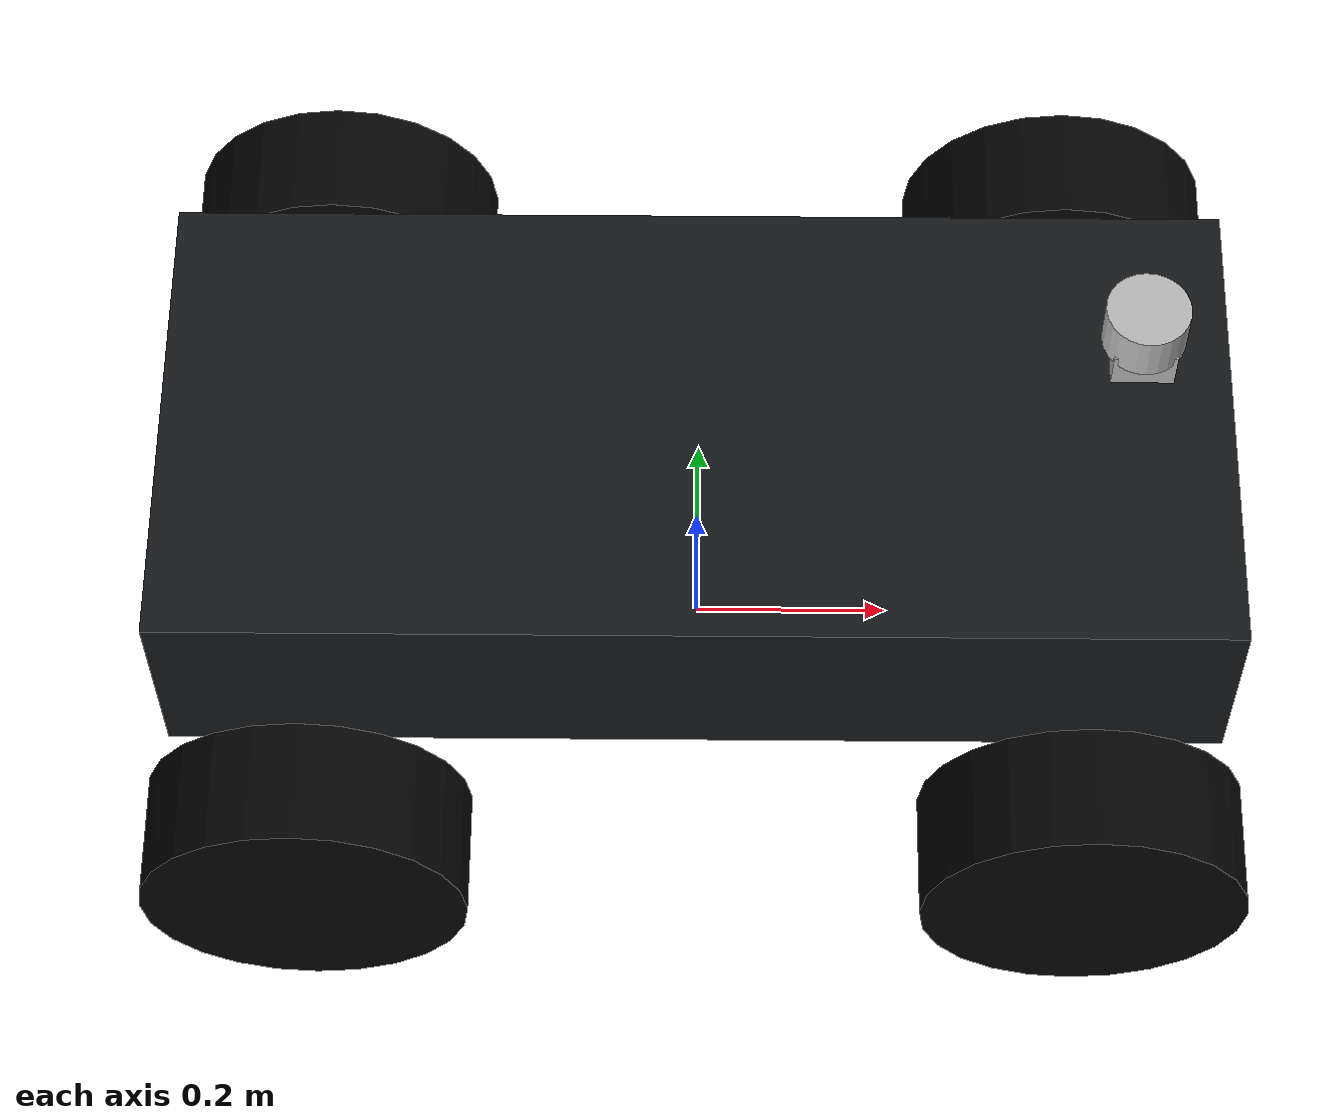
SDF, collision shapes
<?xml version="1.0"?>
<sdf version="1.6">
  <model name="explorer_ackermann_rover">
    <link name="base_link">
      <pose>0 0 0 0 0 0</pose>
      <inertial>
        <pose>0 0 0.28 0 0 0</pose>
        <mass>18.0</mass>
        <inertia>
          <ixx>0.62</ixx>
          <ixy>0.0</ixy>
          <ixz>0.0</ixz>
          <iyy>1.55</iyy>
          <iyz>0.0</iyz>
          <izz>1.85</izz>
        </inertia>
      </inertial>

      <collision name="body_collision">
        <pose>0 0 0.28 0 0 0</pose>
        <geometry>
          <box>
            <size>1.05 0.48 0.22</size>
          </box>
        </geometry>
      </collision>

      <visual name="lower_chassis_visual">
        <pose>0 0 0.24 0 0 0</pose>
        <geometry>
          <box>
            <size>1.18 0.52 0.12</size>
          </box>
        </geometry>
        <material>
          <ambient>0.08 0.09 0.10 1</ambient>
          <diffuse>0.08 0.09 0.10 1</diffuse>
          <specular>0.15 0.15 0.15 1</specular>
        </material>
      </visual>

      <visual name="upper_hull_visual">
        <pose>-0.08 0 0.37 0 0 0</pose>
        <geometry>
          <box>
            <size>1.02 0.50 0.18</size>
          </box>
        </geometry>
        <material>
          <ambient>0.72 0.76 0.70 1</ambient>
          <diffuse>0.72 0.76 0.70 1</diffuse>
          <specular>0.25 0.25 0.22 1</specular>
        </material>
      </visual>

      <visual name="front_payload_bay_visual">
        <pose>0.42 0 0.43 0 0 0</pose>
        <geometry>
          <box>
            <size>0.24 0.34 0.16</size>
          </box>
        </geometry>
        <material>
          <ambient>0.84 0.86 0.82 1</ambient>
          <diffuse>0.84 0.86 0.82 1</diffuse>
          <specular>0.3 0.3 0.28 1</specular>
        </material>
      </visual>

      <visual name="front_bumper_visual">
        <pose>0.63 0 0.23 0 0 0</pose>
        <geometry>
          <box>
            <size>0.06 0.62 0.10</size>
          </box>
        </geometry>
        <material>
          <ambient>0.95 0.36 0.08 1</ambient>
          <diffuse>0.95 0.36 0.08 1</diffuse>
          <specular>0.2 0.12 0.08 1</specular>
        </material>
      </visual>

      <visual name="rear_bumper_visual">
        <pose>-0.63 0 0.23 0 0 0</pose>
        <geometry>
          <box>
            <size>0.06 0.62 0.10</size>
          </box>
        </geometry>
        <material>
          <ambient>0.95 0.36 0.08 1</ambient>
          <diffuse>0.95 0.36 0.08 1</diffuse>
          <specular>0.2 0.12 0.08 1</specular>
        </material>
      </visual>

      <visual name="camera_body_visual">
        <pose>0.56 0 0.45 0 0 0</pose>
        <geometry>
          <box>
            <size>0.08 0.16 0.09</size>
          </box>
        </geometry>
        <material>
          <ambient>0.03 0.03 0.035 1</ambient>
          <diffuse>0.03 0.03 0.035 1</diffuse>
          <specular>0.35 0.35 0.35 1</specular>
        </material>
      </visual>

      <visual name="camera_lens_visual">
        <pose>0.615 0 0.45 0 1.5707 0</pose>
        <geometry>
          <cylinder>
            <radius>0.045</radius>
            <length>0.035</length>
          </cylinder>
        </geometry>
        <material>
          <ambient>0.0 0.025 0.05 1</ambient>
          <diffuse>0.0 0.06 0.12 1</diffuse>
          <specular>0.8 0.9 1.0 1</specular>
        </material>
      </visual>

      <visual name="rear_aruco_marker_visual">
        <pose>-0.20 0 0.464 0 0 0</pose>
        <geometry>
          <plane>
            <normal>0 0 1</normal>
            <size>0.32 0.32</size>
          </plane>
        </geometry>
        <material>
          <diffuse>1 1 1 1</diffuse>
          <specular>0.4 0.4 0.4 1</specular>
          <pbr>
            <metal>
              <albedo_map>model://arucotag/arucotag.png</albedo_map>
            </metal>
          </pbr>
        </material>
      </visual>

      <sensor name="air_pressure_sensor" type="air_pressure">
        <gz_frame_id>base_link</gz_frame_id>
        <always_on>1</always_on>
        <update_rate>50</update_rate>
        <air_pressure>
          <pressure>
            <noise type="gaussian">
              <mean>0</mean>
              <stddev>3</stddev>
            </noise>
          </pressure>
        </air_pressure>
      </sensor>

      <sensor name="magnetometer_sensor" type="magnetometer">
        <gz_frame_id>base_link</gz_frame_id>
        <always_on>1</always_on>
        <update_rate>100</update_rate>
        <magnetometer>
          <x>
            <noise type="gaussian">
              <stddev>0.0001</stddev>
            </noise>
          </x>
          <y>
            <noise type="gaussian">
              <stddev>0.0001</stddev>
            </noise>
          </y>
          <z>
            <noise type="gaussian">
              <stddev>0.0001</stddev>
            </noise>
          </z>
        </magnetometer>
      </sensor>

      <sensor name="imu_sensor" type="imu">
        <gz_frame_id>base_link</gz_frame_id>
        <always_on>1</always_on>
        <update_rate>250</update_rate>
        <imu>
          <angular_velocity>
            <x>
              <noise type="gaussian">
                <mean>0.0</mean>
                <stddev>0.0008726646</stddev>
              </noise>
            </x>
            <y>
              <noise type="gaussian">
                <mean>0.0</mean>
                <stddev>0.0008726646</stddev>
              </noise>
            </y>
            <z>
              <noise type="gaussian">
                <mean>0.0</mean>
                <stddev>0.0008726646</stddev>
              </noise>
            </z>
          </angular_velocity>
          <linear_acceleration>
            <x>
              <noise type="gaussian">
                <mean>0.0</mean>
                <stddev>0.00637</stddev>
              </noise>
            </x>
            <y>
              <noise type="gaussian">
                <mean>0.0</mean>
                <stddev>0.00637</stddev>
              </noise>
            </y>
            <z>
              <noise type="gaussian">
                <mean>0.0</mean>
                <stddev>0.00686</stddev>
              </noise>
            </z>
          </linear_acceleration>
        </imu>
      </sensor>

      <sensor name="navsat_sensor" type="navsat">
        <gz_frame_id>base_link</gz_frame_id>
        <always_on>1</always_on>
        <update_rate>30</update_rate>
      </sensor>
    </link>

    <link name="lidar_sensor_link">
      <pose relative_to="base_link">0.42 0 0.51 0 0 0</pose>
      <inertial>
        <pose>0 0 0.0435 0 0 0</pose>
        <mass>0.37</mass>
        <inertia>
          <ixx>0.0003443775</ixx>
          <ixy>0</ixy>
          <ixz>0</ixz>
          <iyy>0.0003443775</iyy>
          <iyz>0</iyz>
          <izz>0.000222</izz>
        </inertia>
      </inertial>
      <collision name="collision_base">
        <pose>0 0 0.0205 0 0 0</pose>
        <geometry>
          <box>
            <size>0.06 0.06 0.041</size>
          </box>
        </geometry>
      </collision>
      <collision name="collision_head">
        <pose>0 0 0.055 0 0 0</pose>
        <geometry>
          <cylinder>
            <radius>0.04</radius>
            <length>0.05</length>
          </cylinder>
        </geometry>
      </collision>
      <visual name="visual">
        <geometry>
          <mesh>
            <uri>model://lidar_2d_v2/meshes/lidar_2d_v2.dae</uri>
          </mesh>
        </geometry>
      </visual>

      <sensor name="lidar" type="gpu_lidar">
        <gz_frame_id>lidar_sensor_link</gz_frame_id>
        <pose>0 0 0.055 0 0 0</pose>
        <update_rate>20</update_rate>
        <always_on>1</always_on>
        <visualize>false</visualize>
        <ray>
          <scan>
            <horizontal>
              <samples>1024</samples>
              <resolution>1</resolution>
              <min_angle>-3.14159265</min_angle>
              <max_angle>3.14159265</max_angle>
            </horizontal>
            <vertical>
              <samples>1</samples>
              <resolution>1</resolution>
              <min_angle>0.0</min_angle>
              <max_angle>0.0</max_angle>
            </vertical>
          </scan>
          <range>
            <min>0.1</min>
            <max>30.0</max>
            <resolution>0.01</resolution>
          </range>
          <noise>
            <type>gaussian</type>
            <mean>0.0</mean>
            <stddev>0.002</stddev>
          </noise>
        </ray>
      </sensor>
    </link>

    <joint name="lidar_sensor_joint" type="fixed">
      <parent>base_link</parent>
      <child>lidar_sensor_link</child>
    </joint>

    <link name="lf_wheel_link">
      <pose>0.38 0.36 0.16 0 0 0</pose>
      <inertial>
        <pose>0 0 0 1.57079632679 0 0</pose>
        <mass>1.2</mass>
        <inertia>
          <ixx>0.0062</ixx>
          <ixy>0</ixy>
          <ixz>0</ixz>
          <iyy>0.0062</iyy>
          <iyz>0</iyz>
          <izz>0.0108</izz>
        </inertia>
      </inertial>
      <collision name="collision">
        <pose>0 0 0 1.57079632679 0 0</pose>
        <geometry>
          <cylinder>
            <radius>0.16</radius>
            <length>0.12</length>
          </cylinder>
        </geometry>
        <surface>
          <friction>
            <ode>
              <mu>1.5</mu>
              <mu2>1.5</mu2>
              <fdir1>1 0 0</fdir1>
              <slip1>0.0</slip1>
              <slip2>0.0</slip2>
            </ode>
          </friction>
        </surface>
      </collision>
      <visual name="tire_visual">
        <pose>0 0 0 1.57079632679 0 0</pose>
        <geometry>
          <cylinder>
            <radius>0.16</radius>
            <length>0.12</length>
          </cylinder>
        </geometry>
        <material>
          <ambient>0.015 0.015 0.015 1</ambient>
          <diffuse>0.015 0.015 0.015 1</diffuse>
          <specular>0.08 0.08 0.08 1</specular>
        </material>
      </visual>
      <visual name="hub_visual">
        <pose>0 0.063 0 1.57079632679 0 0</pose>
        <geometry>
          <cylinder>
            <radius>0.075</radius>
            <length>0.014</length>
          </cylinder>
        </geometry>
        <material>
          <ambient>0.72 0.72 0.68 1</ambient>
          <diffuse>0.72 0.72 0.68 1</diffuse>
          <specular>0.35 0.35 0.32 1</specular>
        </material>
      </visual>
    </link>

    <link name="lb_wheel_link">
      <pose>-0.38 0.36 0.16 0 0 0</pose>
      <inertial>
        <pose>0 0 0 1.57079632679 0 0</pose>
        <mass>1.2</mass>
        <inertia>
          <ixx>0.0062</ixx>
          <ixy>0</ixy>
          <ixz>0</ixz>
          <iyy>0.0062</iyy>
          <iyz>0</iyz>
          <izz>0.0108</izz>
        </inertia>
      </inertial>
      <collision name="collision">
        <pose>0 0 0 1.57079632679 0 0</pose>
        <geometry>
          <cylinder>
            <radius>0.16</radius>
            <length>0.12</length>
          </cylinder>
        </geometry>
        <surface>
          <friction>
            <ode>
              <mu>1.5</mu>
              <mu2>1.5</mu2>
              <fdir1>1 0 0</fdir1>
              <slip1>0.0</slip1>
              <slip2>0.0</slip2>
            </ode>
          </friction>
        </surface>
      </collision>
      <visual name="tire_visual">
        <pose>0 0 0 1.57079632679 0 0</pose>
        <geometry>
          <cylinder>
            <radius>0.16</radius>
            <length>0.12</length>
          </cylinder>
        </geometry>
        <material>
          <ambient>0.015 0.015 0.015 1</ambient>
          <diffuse>0.015 0.015 0.015 1</diffuse>
          <specular>0.08 0.08 0.08 1</specular>
        </material>
      </visual>
      <visual name="hub_visual">
        <pose>0 0.063 0 1.57079632679 0 0</pose>
        <geometry>
          <cylinder>
            <radius>0.075</radius>
            <length>0.014</length>
          </cylinder>
        </geometry>
        <material>
          <ambient>0.72 0.72 0.68 1</ambient>
          <diffuse>0.72 0.72 0.68 1</diffuse>
          <specular>0.35 0.35 0.32 1</specular>
        </material>
      </visual>
    </link>

    <link name="rf_wheel_link">
      <pose>0.38 -0.36 0.16 0 0 0</pose>
      <inertial>
        <pose>0 0 0 1.57079632679 0 0</pose>
        <mass>1.2</mass>
        <inertia>
          <ixx>0.0062</ixx>
          <ixy>0</ixy>
          <ixz>0</ixz>
          <iyy>0.0062</iyy>
          <iyz>0</iyz>
          <izz>0.0108</izz>
        </inertia>
      </inertial>
      <collision name="collision">
        <pose>0 0 0 1.57079632679 0 0</pose>
        <geometry>
          <cylinder>
            <radius>0.16</radius>
            <length>0.12</length>
          </cylinder>
        </geometry>
        <surface>
          <friction>
            <ode>
              <mu>1.5</mu>
              <mu2>1.5</mu2>
              <fdir1>1 0 0</fdir1>
              <slip1>0.0</slip1>
              <slip2>0.0</slip2>
            </ode>
          </friction>
        </surface>
      </collision>
      <visual name="tire_visual">
        <pose>0 0 0 1.57079632679 0 0</pose>
        <geometry>
          <cylinder>
            <radius>0.16</radius>
            <length>0.12</length>
          </cylinder>
        </geometry>
        <material>
          <ambient>0.015 0.015 0.015 1</ambient>
          <diffuse>0.015 0.015 0.015 1</diffuse>
          <specular>0.08 0.08 0.08 1</specular>
        </material>
      </visual>
      <visual name="hub_visual">
        <pose>0 -0.063 0 1.57079632679 0 0</pose>
        <geometry>
          <cylinder>
            <radius>0.075</radius>
            <length>0.014</length>
          </cylinder>
        </geometry>
        <material>
          <ambient>0.72 0.72 0.68 1</ambient>
          <diffuse>0.72 0.72 0.68 1</diffuse>
          <specular>0.35 0.35 0.32 1</specular>
        </material>
      </visual>
    </link>

    <link name="rb_wheel_link">
      <pose>-0.38 -0.36 0.16 0 0 0</pose>
      <inertial>
        <pose>0 0 0 1.57079632679 0 0</pose>
        <mass>1.2</mass>
        <inertia>
          <ixx>0.0062</ixx>
          <ixy>0</ixy>
          <ixz>0</ixz>
          <iyy>0.0062</iyy>
          <iyz>0</iyz>
          <izz>0.0108</izz>
        </inertia>
      </inertial>
      <collision name="collision">
        <pose>0 0 0 1.57079632679 0 0</pose>
        <geometry>
          <cylinder>
            <radius>0.16</radius>
            <length>0.12</length>
          </cylinder>
        </geometry>
        <surface>
          <friction>
            <ode>
              <mu>1.5</mu>
              <mu2>1.5</mu2>
              <fdir1>1 0 0</fdir1>
              <slip1>0.0</slip1>
              <slip2>0.0</slip2>
            </ode>
          </friction>
        </surface>
      </collision>
      <visual name="tire_visual">
        <pose>0 0 0 1.57079632679 0 0</pose>
        <geometry>
          <cylinder>
            <radius>0.16</radius>
            <length>0.12</length>
          </cylinder>
        </geometry>
        <material>
          <ambient>0.015 0.015 0.015 1</ambient>
          <diffuse>0.015 0.015 0.015 1</diffuse>
          <specular>0.08 0.08 0.08 1</specular>
        </material>
      </visual>
      <visual name="hub_visual">
        <pose>0 -0.063 0 1.57079632679 0 0</pose>
        <geometry>
          <cylinder>
            <radius>0.075</radius>
            <length>0.014</length>
          </cylinder>
        </geometry>
        <material>
          <ambient>0.72 0.72 0.68 1</ambient>
          <diffuse>0.72 0.72 0.68 1</diffuse>
          <specular>0.35 0.35 0.32 1</specular>
        </material>
      </visual>
    </link>

    <link name="lf_steering_link">
      <pose relative_to="lf_wheel_link">0 0 0 0 0 0</pose>
      <inertial>
        <mass>0.20</mass>
        <inertia>
          <ixx>0.00012</ixx>
          <iyy>0.00012</iyy>
          <izz>0.00012</izz>
        </inertia>
      </inertial>
    </link>

    <link name="rf_steering_link">
      <pose relative_to="rf_wheel_link">0 0 0 0 0 0</pose>
      <inertial>
        <mass>0.20</mass>
        <inertia>
          <ixx>0.00012</ixx>
          <iyy>0.00012</iyy>
          <izz>0.00012</izz>
        </inertia>
      </inertial>
    </link>

    <joint name="lf_steering_joint" type="revolute">
      <parent>base_link</parent>
      <child>lf_steering_link</child>
      <pose relative_to="lf_steering_link">0 0 0 0 0 0</pose>
      <axis>
        <xyz>0 0 1</xyz>
        <limit>
          <lower>-0.5236</lower>
          <upper>0.5236</upper>
        </limit>
        <dynamics>
          <damping>0.8</damping>
          <friction>0.02</friction>
        </dynamics>
        <use_parent_model_frame>1</use_parent_model_frame>
      </axis>
    </joint>

    <joint name="rf_steering_joint" type="revolute">
      <parent>base_link</parent>
      <child>rf_steering_link</child>
      <pose relative_to="rf_steering_link">0 0 0 0 0 0</pose>
      <axis>
        <xyz>0 0 1</xyz>
        <limit>
          <lower>-0.5236</lower>
          <upper>0.5236</upper>
        </limit>
        <dynamics>
          <damping>0.8</damping>
          <friction>0.02</friction>
        </dynamics>
        <use_parent_model_frame>1</use_parent_model_frame>
      </axis>
    </joint>

    <joint name="front_left_wheel_joint" type="revolute">
      <child>lf_wheel_link</child>
      <parent>lf_steering_link</parent>
      <axis>
        <xyz>0 1 0</xyz>
        <limit>
          <lower>-1e+16</lower>
          <upper>1e+16</upper>
        </limit>
        <dynamics>
          <spring_reference>0</spring_reference>
          <spring_stiffness>0</spring_stiffness>
        </dynamics>
        <use_parent_model_frame>1</use_parent_model_frame>
      </axis>
    </joint>

    <joint name="rear_left_wheel_joint" type="revolute">
      <child>lb_wheel_link</child>
      <parent>base_link</parent>
      <axis>
        <xyz>0 1 0</xyz>
        <limit>
          <lower>-1e+16</lower>
          <upper>1e+16</upper>
        </limit>
        <dynamics>
          <spring_reference>0</spring_reference>
          <spring_stiffness>0</spring_stiffness>
        </dynamics>
        <use_parent_model_frame>1</use_parent_model_frame>
      </axis>
    </joint>

    <joint name="front_right_wheel_joint" type="revolute">
      <child>rf_wheel_link</child>
      <parent>rf_steering_link</parent>
      <axis>
        <xyz>0 -1 0</xyz>
        <limit>
          <lower>-1e+16</lower>
          <upper>1e+16</upper>
        </limit>
        <dynamics>
          <spring_reference>0</spring_reference>
          <spring_stiffness>0</spring_stiffness>
        </dynamics>
        <use_parent_model_frame>1</use_parent_model_frame>
      </axis>
    </joint>

    <joint name="rear_right_wheel_joint" type="revolute">
      <child>rb_wheel_link</child>
      <parent>base_link</parent>
      <axis>
        <xyz>0 -1 0</xyz>
        <limit>
          <lower>-1e+16</lower>
          <upper>1e+16</upper>
        </limit>
        <dynamics>
          <spring_reference>0</spring_reference>
          <spring_stiffness>0</spring_stiffness>
        </dynamics>
        <use_parent_model_frame>1</use_parent_model_frame>
      </axis>
    </joint>

    <static>0</static>

    <plugin filename="gz-sim-joint-controller-system" name="gz::sim::systems::JointController">
      <joint_name>rear_left_wheel_joint</joint_name>
      <sub_topic>command/motor_speed</sub_topic>
      <control_type>velocity</control_type>
      <use_actuator_msg>true</use_actuator_msg>
      <actuator_number>0</actuator_number>
      <p_gain>15.0</p_gain>
    </plugin>

    <plugin filename="gz-sim-joint-controller-system" name="gz::sim::systems::JointController">
      <joint_name>rear_right_wheel_joint</joint_name>
      <sub_topic>command/motor_speed</sub_topic>
      <control_type>velocity</control_type>
      <use_actuator_msg>true</use_actuator_msg>
      <actuator_number>0</actuator_number>
      <p_gain>15.0</p_gain>
    </plugin>

    <plugin filename="gz-sim-joint-position-controller-system" name="gz::sim::systems::JointPositionController">
      <joint_name>lf_steering_joint</joint_name>
      <sub_topic>servo_0</sub_topic>
      <p_gain>30</p_gain>
      <i_gain>0</i_gain>
      <d_gain>1.0</d_gain>
    </plugin>

    <plugin filename="gz-sim-joint-position-controller-system" name="gz::sim::systems::JointPositionController">
      <joint_name>rf_steering_joint</joint_name>
      <sub_topic>servo_0</sub_topic>
      <p_gain>30</p_gain>
      <i_gain>0</i_gain>
      <d_gain>1.0</d_gain>
    </plugin>

    <plugin filename="gz-sim-joint-state-publisher-system" name="gz::sim::systems::JointStatePublisher">
      <joint_name>front_left_wheel_joint</joint_name>
      <joint_name>rear_left_wheel_joint</joint_name>
      <joint_name>front_right_wheel_joint</joint_name>
      <joint_name>rear_right_wheel_joint</joint_name>
      <joint_name>lf_steering_joint</joint_name>
      <joint_name>rf_steering_joint</joint_name>
    </plugin>
  </model>
</sdf>
